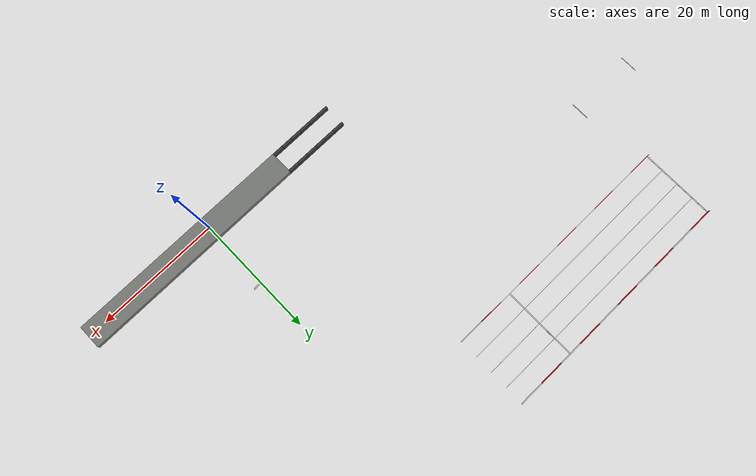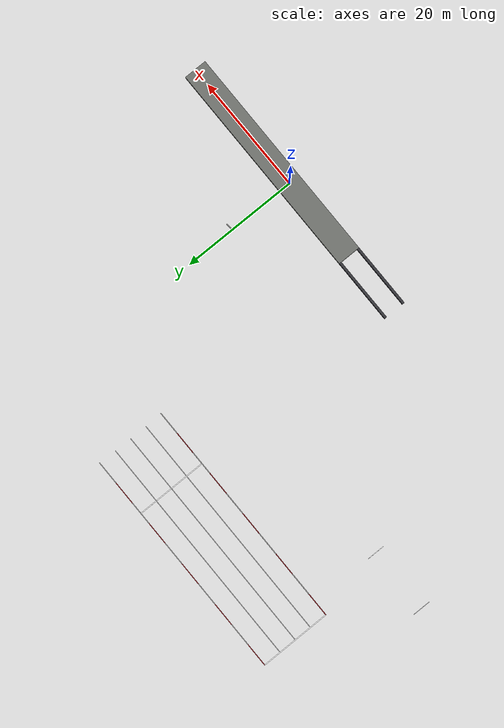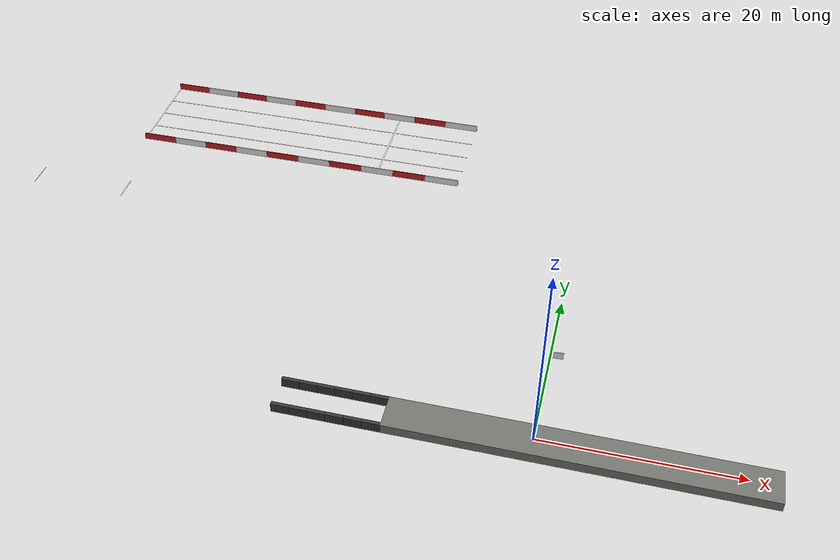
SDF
<sdf version="1.10">
 <world name="ika_parkur">
  <model name="ground_east">
   <static>true</static>
   <pose>4.299834 0 -0.52 0 0 0</pose>
   <link name="ground_east_link">
    <collision name="ground_east_link_collision">
     <geometry><box><size>37.599668 3.94 1</size></box></geometry>
     <surface>
      <friction><ode><mu>1</mu><mu2>1</mu2></ode></friction>
      <contact><ode><kp>1000000</kp><kd>1</kd></ode></contact>
     </surface>
    </collision>
    <visual name="ground_east_link_visual">
     <geometry><box><size>37.599668 3.94 1</size></box></geometry>
     <material>
      <ambient>0.45 0.46 0.44 1</ambient>
      <diffuse>0.45 0.46 0.44 1</diffuse>
      <specular>0.1 0.1 0.1 1</specular>
     </material>
    </visual>
   </link>
  </model>
  <model name="parkur_barriers">
   <static>true</static>
   <link name="barrier_r_0121">
    <pose>0.629649 11.499554 0.4 0 0 0.07854</pose>
    <collision name="barrier_r_0121_col">
     <geometry><box><size>1.288455 0.1 0.8</size></box></geometry>
     <surface>
      <friction><ode><mu>0.6</mu><mu2>0.6</mu2></ode></friction>
      <contact><ode><kp>1000000</kp><kd>1</kd></ode></contact>
     </surface>
    </collision>
    <visual name="barrier_r_0121_vis">
     <geometry><box><size>1.288455 0.1 0.8</size></box></geometry>
     <material>
      <ambient>0.93 0.93 0.92 1</ambient>
      <diffuse>0.93 0.93 0.92 1</diffuse>
      <specular>0.1 0.1 0.1 1</specular>
     </material>
    </visual>
   </link>
  </model>
  <model name="stop_markings">
   <static>true</static>
   <link name="stop_cikis">
    <pose>-52.5 26 1.131 0 -0.422854 3.141593</pose>
    <visual name="stop_cikis_vis">
     <geometry><box><size>0.1 3 0.012</size></box></geometry>
     <material>
      <ambient>0.95 0.95 0.95 1</ambient>
      <diffuse>0.95 0.95 0.95 1</diffuse>
      <specular>0.1 0.1 0.1 1</specular>
     </material>
    </visual>
   </link>
   <link name="stop_inis">
    <pose>-63.5 26 1.131 0 0.422854 3.141593</pose>
    <visual name="stop_inis_vis">
     <geometry><box><size>0.1 3 0.012</size></box></geometry>
     <material>
      <ambient>0.95 0.95 0.95 1</ambient>
      <diffuse>0.95 0.95 0.95 1</diffuse>
      <specular>0.1 0.1 0.1 1</specular>
     </material>
    </visual>
   </link>
  </model>
  <model name="su_havuzu_duvar">
   <static>true</static>
   <link name="wall_l00">
    <pose>-15.416667 -1.77 -0.52 0 0 3.141593</pose>
    <collision name="wall_l00_col">
     <geometry><box><size>1.87 0.4 1</size></box></geometry>
     <surface>
      <friction><ode><mu>1</mu><mu2>1</mu2></ode></friction>
      <contact><ode><kp>1000000</kp><kd>1</kd></ode></contact>
     </surface>
    </collision>
    <visual name="wall_l00_vis">
     <geometry><box><size>1.87 0.4 1</size></box></geometry>
     <material>
      <ambient>0.22 0.22 0.24 1</ambient>
      <diffuse>0.22 0.22 0.24 1</diffuse>
      <specular>0.1 0.1 0.1 1</specular>
     </material>
    </visual>
   </link>
   <link name="wall_r00">
    <pose>-15.416667 1.77 -0.52 0 0 3.141593</pose>
    <collision name="wall_r00_col">
     <geometry><box><size>1.87 0.4 1</size></box></geometry>
     <surface>
      <friction><ode><mu>1</mu><mu2>1</mu2></ode></friction>
      <contact><ode><kp>1000000</kp><kd>1</kd></ode></contact>
     </surface>
    </collision>
    <visual name="wall_r00_vis">
     <geometry><box><size>1.87 0.4 1</size></box></geometry>
     <material>
      <ambient>0.22 0.22 0.24 1</ambient>
      <diffuse>0.22 0.22 0.24 1</diffuse>
      <specular>0.1 0.1 0.1 1</specular>
     </material>
    </visual>
   </link>
   <link name="wall_l01">
    <pose>-17.25 -1.77 -0.52 0 0 3.141593</pose>
    <collision name="wall_l01_col">
     <geometry><box><size>1.87 0.4 1</size></box></geometry>
     <surface>
      <friction><ode><mu>1</mu><mu2>1</mu2></ode></friction>
      <contact><ode><kp>1000000</kp><kd>1</kd></ode></contact>
     </surface>
    </collision>
    <visual name="wall_l01_vis">
     <geometry><box><size>1.87 0.4 1</size></box></geometry>
     <material>
      <ambient>0.22 0.22 0.24 1</ambient>
      <diffuse>0.22 0.22 0.24 1</diffuse>
      <specular>0.1 0.1 0.1 1</specular>
     </material>
    </visual>
   </link>
   <link name="wall_r01">
    <pose>-17.25 1.77 -0.52 0 0 3.141593</pose>
    <collision name="wall_r01_col">
     <geometry><box><size>1.87 0.4 1</size></box></geometry>
     <surface>
      <friction><ode><mu>1</mu><mu2>1</mu2></ode></friction>
      <contact><ode><kp>1000000</kp><kd>1</kd></ode></contact>
     </surface>
    </collision>
    <visual name="wall_r01_vis">
     <geometry><box><size>1.87 0.4 1</size></box></geometry>
     <material>
      <ambient>0.22 0.22 0.24 1</ambient>
      <diffuse>0.22 0.22 0.24 1</diffuse>
      <specular>0.1 0.1 0.1 1</specular>
     </material>
    </visual>
   </link>
   <link name="wall_l02">
    <pose>-19.083333 -1.77 -0.52 0 0 3.141593</pose>
    <collision name="wall_l02_col">
     <geometry><box><size>1.87 0.4 1</size></box></geometry>
     <surface>
      <friction><ode><mu>1</mu><mu2>1</mu2></ode></friction>
      <contact><ode><kp>1000000</kp><kd>1</kd></ode></contact>
     </surface>
    </collision>
    <visual name="wall_l02_vis">
     <geometry><box><size>1.87 0.4 1</size></box></geometry>
     <material>
      <ambient>0.22 0.22 0.24 1</ambient>
      <diffuse>0.22 0.22 0.24 1</diffuse>
      <specular>0.1 0.1 0.1 1</specular>
     </material>
    </visual>
   </link>
   <link name="wall_r02">
    <pose>-19.083333 1.77 -0.52 0 0 3.141593</pose>
    <collision name="wall_r02_col">
     <geometry><box><size>1.87 0.4 1</size></box></geometry>
     <surface>
      <friction><ode><mu>1</mu><mu2>1</mu2></ode></friction>
      <contact><ode><kp>1000000</kp><kd>1</kd></ode></contact>
     </surface>
    </collision>
    <visual name="wall_r02_vis">
     <geometry><box><size>1.87 0.4 1</size></box></geometry>
     <material>
      <ambient>0.22 0.22 0.24 1</ambient>
      <diffuse>0.22 0.22 0.24 1</diffuse>
      <specular>0.1 0.1 0.1 1</specular>
     </material>
    </visual>
   </link>
   <link name="wall_l03">
    <pose>-20.916667 -1.77 -0.52 0 0 3.141593</pose>
    <collision name="wall_l03_col">
     <geometry><box><size>1.87 0.4 1</size></box></geometry>
     <surface>
      <friction><ode><mu>1</mu><mu2>1</mu2></ode></friction>
      <contact><ode><kp>1000000</kp><kd>1</kd></ode></contact>
     </surface>
    </collision>
    <visual name="wall_l03_vis">
     <geometry><box><size>1.87 0.4 1</size></box></geometry>
     <material>
      <ambient>0.22 0.22 0.24 1</ambient>
      <diffuse>0.22 0.22 0.24 1</diffuse>
      <specular>0.1 0.1 0.1 1</specular>
     </material>
    </visual>
   </link>
   <link name="wall_r03">
    <pose>-20.916667 1.77 -0.52 0 0 3.141593</pose>
    <collision name="wall_r03_col">
     <geometry><box><size>1.87 0.4 1</size></box></geometry>
     <surface>
      <friction><ode><mu>1</mu><mu2>1</mu2></ode></friction>
      <contact><ode><kp>1000000</kp><kd>1</kd></ode></contact>
     </surface>
    </collision>
    <visual name="wall_r03_vis">
     <geometry><box><size>1.87 0.4 1</size></box></geometry>
     <material>
      <ambient>0.22 0.22 0.24 1</ambient>
      <diffuse>0.22 0.22 0.24 1</diffuse>
      <specular>0.1 0.1 0.1 1</specular>
     </material>
    </visual>
   </link>
   <link name="wall_l04">
    <pose>-22.75 -1.77 -0.52 0 0 3.141593</pose>
    <collision name="wall_l04_col">
     <geometry><box><size>1.87 0.4 1</size></box></geometry>
     <surface>
      <friction><ode><mu>1</mu><mu2>1</mu2></ode></friction>
      <contact><ode><kp>1000000</kp><kd>1</kd></ode></contact>
     </surface>
    </collision>
    <visual name="wall_l04_vis">
     <geometry><box><size>1.87 0.4 1</size></box></geometry>
     <material>
      <ambient>0.22 0.22 0.24 1</ambient>
      <diffuse>0.22 0.22 0.24 1</diffuse>
      <specular>0.1 0.1 0.1 1</specular>
     </material>
    </visual>
   </link>
   <link name="wall_r04">
    <pose>-22.75 1.77 -0.52 0 0 3.141593</pose>
    <collision name="wall_r04_col">
     <geometry><box><size>1.87 0.4 1</size></box></geometry>
     <surface>
      <friction><ode><mu>1</mu><mu2>1</mu2></ode></friction>
      <contact><ode><kp>1000000</kp><kd>1</kd></ode></contact>
     </surface>
    </collision>
    <visual name="wall_r04_vis">
     <geometry><box><size>1.87 0.4 1</size></box></geometry>
     <material>
      <ambient>0.22 0.22 0.24 1</ambient>
      <diffuse>0.22 0.22 0.24 1</diffuse>
      <specular>0.1 0.1 0.1 1</specular>
     </material>
    </visual>
   </link>
   <link name="wall_l05">
    <pose>-24.583333 -1.77 -0.52 0 0 3.141593</pose>
    <collision name="wall_l05_col">
     <geometry><box><size>1.87 0.4 1</size></box></geometry>
     <surface>
      <friction><ode><mu>1</mu><mu2>1</mu2></ode></friction>
      <contact><ode><kp>1000000</kp><kd>1</kd></ode></contact>
     </surface>
    </collision>
    <visual name="wall_l05_vis">
     <geometry><box><size>1.87 0.4 1</size></box></geometry>
     <material>
      <ambient>0.22 0.22 0.24 1</ambient>
      <diffuse>0.22 0.22 0.24 1</diffuse>
      <specular>0.1 0.1 0.1 1</specular>
     </material>
    </visual>
   </link>
   <link name="wall_r05">
    <pose>-24.583333 1.77 -0.52 0 0 3.141593</pose>
    <collision name="wall_r05_col">
     <geometry><box><size>1.87 0.4 1</size></box></geometry>
     <surface>
      <friction><ode><mu>1</mu><mu2>1</mu2></ode></friction>
      <contact><ode><kp>1000000</kp><kd>1</kd></ode></contact>
     </surface>
    </collision>
    <visual name="wall_r05_vis">
     <geometry><box><size>1.87 0.4 1</size></box></geometry>
     <material>
      <ambient>0.22 0.22 0.24 1</ambient>
      <diffuse>0.22 0.22 0.24 1</diffuse>
      <specular>0.1 0.1 0.1 1</specular>
     </material>
    </visual>
   </link>
  </model>
  <model name="hizlanma_bariyer">
   <static>true</static>
   <link name="ab_s00">
    <pose>-53 37.95 0.4 0 0 0</pose>
    <collision name="ab_s00_col">
     <geometry><box><size>4.08 0.1 0.8</size></box></geometry>
     <surface>
      <friction><ode><mu>1</mu><mu2>1</mu2></ode></friction>
      <contact><ode><kp>1000000</kp><kd>1</kd></ode></contact>
     </surface>
    </collision>
    <visual name="ab_s00_vis">
     <geometry><box><size>4.08 0.1 0.8</size></box></geometry>
     <material>
      <ambient>0.81 0.13 0.15 1</ambient>
      <diffuse>0.81 0.13 0.15 1</diffuse>
      <specular>0.1 0.1 0.1 1</specular>
     </material>
    </visual>
   </link>
   <link name="ab_n00">
    <pose>-53 50.05 0.4 0 0 0</pose>
    <collision name="ab_n00_col">
     <geometry><box><size>4.08 0.1 0.8</size></box></geometry>
     <surface>
      <friction><ode><mu>1</mu><mu2>1</mu2></ode></friction>
      <contact><ode><kp>1000000</kp><kd>1</kd></ode></contact>
     </surface>
    </collision>
    <visual name="ab_n00_vis">
     <geometry><box><size>4.08 0.1 0.8</size></box></geometry>
     <material>
      <ambient>0.81 0.13 0.15 1</ambient>
      <diffuse>0.81 0.13 0.15 1</diffuse>
      <specular>0.1 0.1 0.1 1</specular>
     </material>
    </visual>
   </link>
   <link name="ab_s01">
    <pose>-49 37.95 0.4 0 0 0</pose>
    <collision name="ab_s01_col">
     <geometry><box><size>4.08 0.1 0.8</size></box></geometry>
     <surface>
      <friction><ode><mu>1</mu><mu2>1</mu2></ode></friction>
      <contact><ode><kp>1000000</kp><kd>1</kd></ode></contact>
     </surface>
    </collision>
    <visual name="ab_s01_vis">
     <geometry><box><size>4.08 0.1 0.8</size></box></geometry>
     <material>
      <ambient>0.93 0.93 0.92 1</ambient>
      <diffuse>0.93 0.93 0.92 1</diffuse>
      <specular>0.1 0.1 0.1 1</specular>
     </material>
    </visual>
   </link>
   <link name="ab_n01">
    <pose>-49 50.05 0.4 0 0 0</pose>
    <collision name="ab_n01_col">
     <geometry><box><size>4.08 0.1 0.8</size></box></geometry>
     <surface>
      <friction><ode><mu>1</mu><mu2>1</mu2></ode></friction>
      <contact><ode><kp>1000000</kp><kd>1</kd></ode></contact>
     </surface>
    </collision>
    <visual name="ab_n01_vis">
     <geometry><box><size>4.08 0.1 0.8</size></box></geometry>
     <material>
      <ambient>0.93 0.93 0.92 1</ambient>
      <diffuse>0.93 0.93 0.92 1</diffuse>
      <specular>0.1 0.1 0.1 1</specular>
     </material>
    </visual>
   </link>
   <link name="ab_s02">
    <pose>-45 37.95 0.4 0 0 0</pose>
    <collision name="ab_s02_col">
     <geometry><box><size>4.08 0.1 0.8</size></box></geometry>
     <surface>
      <friction><ode><mu>1</mu><mu2>1</mu2></ode></friction>
      <contact><ode><kp>1000000</kp><kd>1</kd></ode></contact>
     </surface>
    </collision>
    <visual name="ab_s02_vis">
     <geometry><box><size>4.08 0.1 0.8</size></box></geometry>
     <material>
      <ambient>0.81 0.13 0.15 1</ambient>
      <diffuse>0.81 0.13 0.15 1</diffuse>
      <specular>0.1 0.1 0.1 1</specular>
     </material>
    </visual>
   </link>
   <link name="ab_n02">
    <pose>-45 50.05 0.4 0 0 0</pose>
    <collision name="ab_n02_col">
     <geometry><box><size>4.08 0.1 0.8</size></box></geometry>
     <surface>
      <friction><ode><mu>1</mu><mu2>1</mu2></ode></friction>
      <contact><ode><kp>1000000</kp><kd>1</kd></ode></contact>
     </surface>
    </collision>
    <visual name="ab_n02_vis">
     <geometry><box><size>4.08 0.1 0.8</size></box></geometry>
     <material>
      <ambient>0.81 0.13 0.15 1</ambient>
      <diffuse>0.81 0.13 0.15 1</diffuse>
      <specular>0.1 0.1 0.1 1</specular>
     </material>
    </visual>
   </link>
   <link name="ab_s03">
    <pose>-41 37.95 0.4 0 0 0</pose>
    <collision name="ab_s03_col">
     <geometry><box><size>4.08 0.1 0.8</size></box></geometry>
     <surface>
      <friction><ode><mu>1</mu><mu2>1</mu2></ode></friction>
      <contact><ode><kp>1000000</kp><kd>1</kd></ode></contact>
     </surface>
    </collision>
    <visual name="ab_s03_vis">
     <geometry><box><size>4.08 0.1 0.8</size></box></geometry>
     <material>
      <ambient>0.93 0.93 0.92 1</ambient>
      <diffuse>0.93 0.93 0.92 1</diffuse>
      <specular>0.1 0.1 0.1 1</specular>
     </material>
    </visual>
   </link>
   <link name="ab_n03">
    <pose>-41 50.05 0.4 0 0 0</pose>
    <collision name="ab_n03_col">
     <geometry><box><size>4.08 0.1 0.8</size></box></geometry>
     <surface>
      <friction><ode><mu>1</mu><mu2>1</mu2></ode></friction>
      <contact><ode><kp>1000000</kp><kd>1</kd></ode></contact>
     </surface>
    </collision>
    <visual name="ab_n03_vis">
     <geometry><box><size>4.08 0.1 0.8</size></box></geometry>
     <material>
      <ambient>0.93 0.93 0.92 1</ambient>
      <diffuse>0.93 0.93 0.92 1</diffuse>
      <specular>0.1 0.1 0.1 1</specular>
     </material>
    </visual>
   </link>
   <link name="ab_s04">
    <pose>-37 37.95 0.4 0 0 0</pose>
    <collision name="ab_s04_col">
     <geometry><box><size>4.08 0.1 0.8</size></box></geometry>
     <surface>
      <friction><ode><mu>1</mu><mu2>1</mu2></ode></friction>
      <contact><ode><kp>1000000</kp><kd>1</kd></ode></contact>
     </surface>
    </collision>
    <visual name="ab_s04_vis">
     <geometry><box><size>4.08 0.1 0.8</size></box></geometry>
     <material>
      <ambient>0.81 0.13 0.15 1</ambient>
      <diffuse>0.81 0.13 0.15 1</diffuse>
      <specular>0.1 0.1 0.1 1</specular>
     </material>
    </visual>
   </link>
   <link name="ab_n04">
    <pose>-37 50.05 0.4 0 0 0</pose>
    <collision name="ab_n04_col">
     <geometry><box><size>4.08 0.1 0.8</size></box></geometry>
     <surface>
      <friction><ode><mu>1</mu><mu2>1</mu2></ode></friction>
      <contact><ode><kp>1000000</kp><kd>1</kd></ode></contact>
     </surface>
    </collision>
    <visual name="ab_n04_vis">
     <geometry><box><size>4.08 0.1 0.8</size></box></geometry>
     <material>
      <ambient>0.81 0.13 0.15 1</ambient>
      <diffuse>0.81 0.13 0.15 1</diffuse>
      <specular>0.1 0.1 0.1 1</specular>
     </material>
    </visual>
   </link>
   <link name="ab_s05">
    <pose>-33 37.95 0.4 0 0 0</pose>
    <collision name="ab_s05_col">
     <geometry><box><size>4.08 0.1 0.8</size></box></geometry>
     <surface>
      <friction><ode><mu>1</mu><mu2>1</mu2></ode></friction>
      <contact><ode><kp>1000000</kp><kd>1</kd></ode></contact>
     </surface>
    </collision>
    <visual name="ab_s05_vis">
     <geometry><box><size>4.08 0.1 0.8</size></box></geometry>
     <material>
      <ambient>0.93 0.93 0.92 1</ambient>
      <diffuse>0.93 0.93 0.92 1</diffuse>
      <specular>0.1 0.1 0.1 1</specular>
     </material>
    </visual>
   </link>
   <link name="ab_n05">
    <pose>-33 50.05 0.4 0 0 0</pose>
    <collision name="ab_n05_col">
     <geometry><box><size>4.08 0.1 0.8</size></box></geometry>
     <surface>
      <friction><ode><mu>1</mu><mu2>1</mu2></ode></friction>
      <contact><ode><kp>1000000</kp><kd>1</kd></ode></contact>
     </surface>
    </collision>
    <visual name="ab_n05_vis">
     <geometry><box><size>4.08 0.1 0.8</size></box></geometry>
     <material>
      <ambient>0.93 0.93 0.92 1</ambient>
      <diffuse>0.93 0.93 0.92 1</diffuse>
      <specular>0.1 0.1 0.1 1</specular>
     </material>
    </visual>
   </link>
   <link name="ab_s06">
    <pose>-29 37.95 0.4 0 0 0</pose>
    <collision name="ab_s06_col">
     <geometry><box><size>4.08 0.1 0.8</size></box></geometry>
     <surface>
      <friction><ode><mu>1</mu><mu2>1</mu2></ode></friction>
      <contact><ode><kp>1000000</kp><kd>1</kd></ode></contact>
     </surface>
    </collision>
    <visual name="ab_s06_vis">
     <geometry><box><size>4.08 0.1 0.8</size></box></geometry>
     <material>
      <ambient>0.81 0.13 0.15 1</ambient>
      <diffuse>0.81 0.13 0.15 1</diffuse>
      <specular>0.1 0.1 0.1 1</specular>
     </material>
    </visual>
   </link>
   <link name="ab_n06">
    <pose>-29 50.05 0.4 0 0 0</pose>
    <collision name="ab_n06_col">
     <geometry><box><size>4.08 0.1 0.8</size></box></geometry>
     <surface>
      <friction><ode><mu>1</mu><mu2>1</mu2></ode></friction>
      <contact><ode><kp>1000000</kp><kd>1</kd></ode></contact>
     </surface>
    </collision>
    <visual name="ab_n06_vis">
     <geometry><box><size>4.08 0.1 0.8</size></box></geometry>
     <material>
      <ambient>0.81 0.13 0.15 1</ambient>
      <diffuse>0.81 0.13 0.15 1</diffuse>
      <specular>0.1 0.1 0.1 1</specular>
     </material>
    </visual>
   </link>
   <link name="ab_s07">
    <pose>-25 37.95 0.4 0 0 0</pose>
    <collision name="ab_s07_col">
     <geometry><box><size>4.08 0.1 0.8</size></box></geometry>
     <surface>
      <friction><ode><mu>1</mu><mu2>1</mu2></ode></friction>
      <contact><ode><kp>1000000</kp><kd>1</kd></ode></contact>
     </surface>
    </collision>
    <visual name="ab_s07_vis">
     <geometry><box><size>4.08 0.1 0.8</size></box></geometry>
     <material>
      <ambient>0.93 0.93 0.92 1</ambient>
      <diffuse>0.93 0.93 0.92 1</diffuse>
      <specular>0.1 0.1 0.1 1</specular>
     </material>
    </visual>
   </link>
   <link name="ab_n07">
    <pose>-25 50.05 0.4 0 0 0</pose>
    <collision name="ab_n07_col">
     <geometry><box><size>4.08 0.1 0.8</size></box></geometry>
     <surface>
      <friction><ode><mu>1</mu><mu2>1</mu2></ode></friction>
      <contact><ode><kp>1000000</kp><kd>1</kd></ode></contact>
     </surface>
    </collision>
    <visual name="ab_n07_vis">
     <geometry><box><size>4.08 0.1 0.8</size></box></geometry>
     <material>
      <ambient>0.93 0.93 0.92 1</ambient>
      <diffuse>0.93 0.93 0.92 1</diffuse>
      <specular>0.1 0.1 0.1 1</specular>
     </material>
    </visual>
   </link>
   <link name="ab_s08">
    <pose>-21 37.95 0.4 0 0 0</pose>
    <collision name="ab_s08_col">
     <geometry><box><size>4.08 0.1 0.8</size></box></geometry>
     <surface>
      <friction><ode><mu>1</mu><mu2>1</mu2></ode></friction>
      <contact><ode><kp>1000000</kp><kd>1</kd></ode></contact>
     </surface>
    </collision>
    <visual name="ab_s08_vis">
     <geometry><box><size>4.08 0.1 0.8</size></box></geometry>
     <material>
      <ambient>0.81 0.13 0.15 1</ambient>
      <diffuse>0.81 0.13 0.15 1</diffuse>
      <specular>0.1 0.1 0.1 1</specular>
     </material>
    </visual>
   </link>
   <link name="ab_n08">
    <pose>-21 50.05 0.4 0 0 0</pose>
    <collision name="ab_n08_col">
     <geometry><box><size>4.08 0.1 0.8</size></box></geometry>
     <surface>
      <friction><ode><mu>1</mu><mu2>1</mu2></ode></friction>
      <contact><ode><kp>1000000</kp><kd>1</kd></ode></contact>
     </surface>
    </collision>
    <visual name="ab_n08_vis">
     <geometry><box><size>4.08 0.1 0.8</size></box></geometry>
     <material>
      <ambient>0.81 0.13 0.15 1</ambient>
      <diffuse>0.81 0.13 0.15 1</diffuse>
      <specular>0.1 0.1 0.1 1</specular>
     </material>
    </visual>
   </link>
   <link name="ab_s09">
    <pose>-17 37.95 0.4 0 0 0</pose>
    <collision name="ab_s09_col">
     <geometry><box><size>4.08 0.1 0.8</size></box></geometry>
     <surface>
      <friction><ode><mu>1</mu><mu2>1</mu2></ode></friction>
      <contact><ode><kp>1000000</kp><kd>1</kd></ode></contact>
     </surface>
    </collision>
    <visual name="ab_s09_vis">
     <geometry><box><size>4.08 0.1 0.8</size></box></geometry>
     <material>
      <ambient>0.93 0.93 0.92 1</ambient>
      <diffuse>0.93 0.93 0.92 1</diffuse>
      <specular>0.1 0.1 0.1 1</specular>
     </material>
    </visual>
   </link>
   <link name="ab_n09">
    <pose>-17 50.05 0.4 0 0 0</pose>
    <collision name="ab_n09_col">
     <geometry><box><size>4.08 0.1 0.8</size></box></geometry>
     <surface>
      <friction><ode><mu>1</mu><mu2>1</mu2></ode></friction>
      <contact><ode><kp>1000000</kp><kd>1</kd></ode></contact>
     </surface>
    </collision>
    <visual name="ab_n09_vis">
     <geometry><box><size>4.08 0.1 0.8</size></box></geometry>
     <material>
      <ambient>0.93 0.93 0.92 1</ambient>
      <diffuse>0.93 0.93 0.92 1</diffuse>
      <specular>0.1 0.1 0.1 1</specular>
     </material>
    </visual>
   </link>
  </model>
  <model name="hizlanma_cizgiler">
   <static>true</static>
   <link name="line_baslangic">
    <pose>-55 44 0.006 0 0 0</pose>
    <visual name="line_baslangic_vis">
     <geometry><box><size>0.15 12 0.012</size></box></geometry>
     <material>
      <ambient>0.95 0.95 0.95 1</ambient>
      <diffuse>0.95 0.95 0.95 1</diffuse>
      <specular>0.1 0.1 0.1 1</specular>
     </material>
    </visual>
   </link>
   <link name="line_bitis">
    <pose>-25 44 0.006 0 0 0</pose>
    <visual name="line_bitis_vis">
     <geometry><box><size>0.15 12 0.012</size></box></geometry>
     <material>
      <ambient>0.95 0.95 0.95 1</ambient>
      <diffuse>0.95 0.95 0.95 1</diffuse>
      <specular>0.1 0.1 0.1 1</specular>
     </material>
    </visual>
   </link>
   <link name="lane_1">
    <pose>-35 41 0.006 0 0 0</pose>
    <visual name="lane_1_vis">
     <geometry><box><size>40 0.08 0.012</size></box></geometry>
     <material>
      <ambient>0.95 0.95 0.95 1</ambient>
      <diffuse>0.95 0.95 0.95 1</diffuse>
      <specular>0.1 0.1 0.1 1</specular>
     </material>
    </visual>
   </link>
   <link name="lane_2">
    <pose>-35 44 0.006 0 0 0</pose>
    <visual name="lane_2_vis">
     <geometry><box><size>40 0.08 0.012</size></box></geometry>
     <material>
      <ambient>0.95 0.95 0.95 1</ambient>
      <diffuse>0.95 0.95 0.95 1</diffuse>
      <specular>0.1 0.1 0.1 1</specular>
     </material>
    </visual>
   </link>
   <link name="lane_3">
    <pose>-35 47 0.006 0 0 0</pose>
    <visual name="lane_3_vis">
     <geometry><box><size>40 0.08 0.012</size></box></geometry>
     <material>
      <ambient>0.95 0.95 0.95 1</ambient>
      <diffuse>0.95 0.95 0.95 1</diffuse>
      <specular>0.1 0.1 0.1 1</specular>
     </material>
    </visual>
   </link>
  </model>
 </world>
</sdf>
